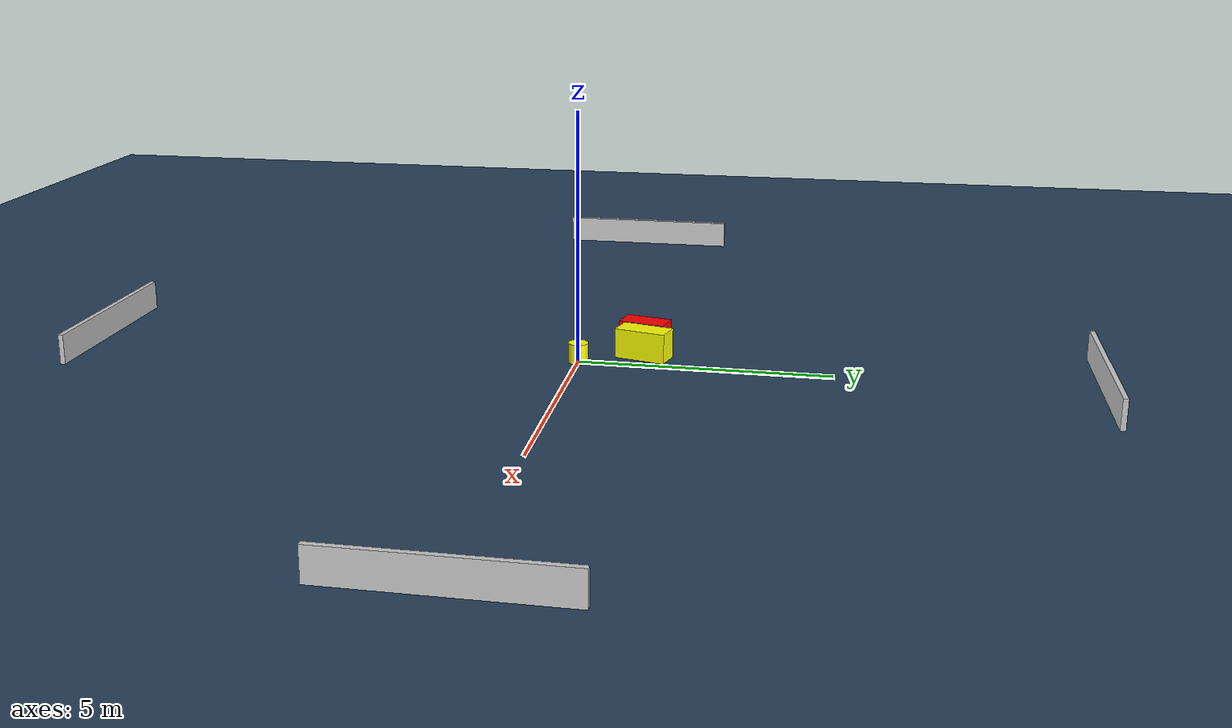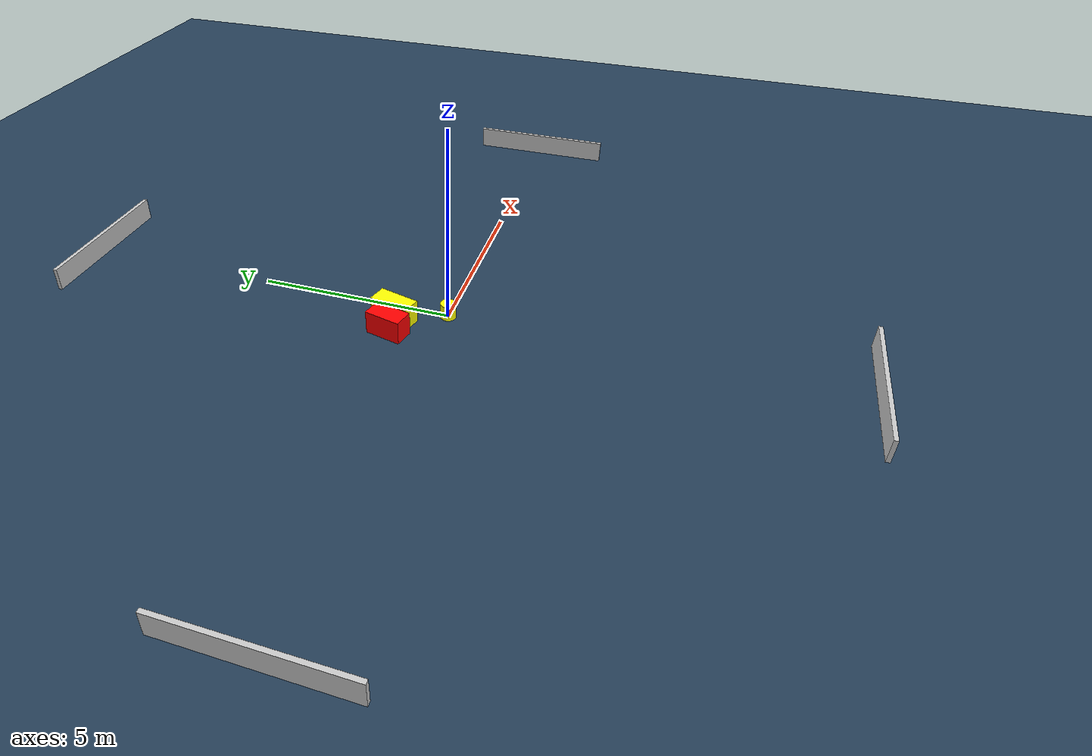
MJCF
<?xml version="1.0" ?>
<mujoco model="generated_environment">
  <option timestep="0.01" integrator="RK4" cone="elliptic"/>
  <default>
    <geom density="1"/>
  </default>
  <asset>
    <texture builtin="gradient" height="3072" name="skybox" rgb1="0.3 0.5 0.7" rgb2="0 0 0" type="skybox" width="512"/>
    <texture builtin="checker" height="300" name="groundplane" rgb1="0.2 0.3 0.4" rgb2="0.1 0.2 0.3" type="2d" width="300"/>
    <material name="groundplane" reflectance="0.2" texrepeat="5 5" texture="groundplane"/>
  </asset>
  <worldbody>
    <light dir="0 0 -1" directional="true" pos="0 0 1.5"/>
    <geom condim="3" friction="0.5 0.005 0.001" material="groundplane" name="floor" pos="0 0 0" size="0 0 0.05" type="plane"/>
    <body name="walls">
      <geom name="wall_1" condim="4" pos="-10.0 0.0 0.3" rgba="0.800000011920929 0.800000011920929 0.800000011920929 1.0" size="0.05 2.0 0.3" type="box"/>
      <geom name="wall_2" condim="4" pos="10.0 0.0 0.3" rgba="0.800000011920929 0.800000011920929 0.800000011920929 1.0" size="0.05 2.0 0.3" type="box"/>
      <geom name="wall_3" condim="4" pos="0.0 -10.0 0.3" rgba="0.800000011920929 0.800000011920929 0.800000011920929 1.0" size="2.0 0.05 0.3" type="box"/>
      <geom name="wall_4" condim="4" pos="0.0 10.0 0.3" rgba="0.800000011920929 0.800000011920929 0.800000011920929 1.0" size="2.0 0.05 0.3" type="box"/>
    </body>
    <body name="robot">
      <joint name="joint_x" type="slide" pos="0 0 0" axis="1 0 0"/>
      <joint name="joint_y" type="slide" pos="0 0 0" axis="0 1 0"/>
      <geom name="robot" type="cylinder" pos="0.0 0.0 0.2" size="0.2 0.2 0.0" mass="5.0" friction="1.0 0.005 0.0001" condim="4" rgba="1.0 1.0 0.0 1.0"/>
    </body>
    <body name="obstacle_1_movable">
      <geom name="obstacle_1_movable" condim="4" pos="-0.5232495940139456 1.2351354053482764 0.3" euler="0 0 165.43067761146773" friction="0.0 0.005 0.001" rgba="1.0 1.0 0.0 1.0" size="0.25006007655769075 0.5215831273821975 0.3" type="box" mass="0.1"/>
      <joint type="free"/>
    </body>
    <body name="obstacle_2_static">
      <geom name="obstacle_2_static" condim="4" pos="-1.0901172613896006 1.1814043432601316 0.3" euler="0 0 166.47129457492332" friction="0.0 0.005 0.001" rgba="1.0 0.0 0.0 1.0" size="0.2521035834416866 0.46837007346110177 0.3" type="box"/>
    </body>
  </worldbody>
  <actuator>
    <motor name="actuator_x" joint="joint_x" gear="1" ctrlrange="-1 1"/>
    <motor name="actuator_y" joint="joint_y" gear="1" ctrlrange="-1 1"/>
  </actuator>
</mujoco>
